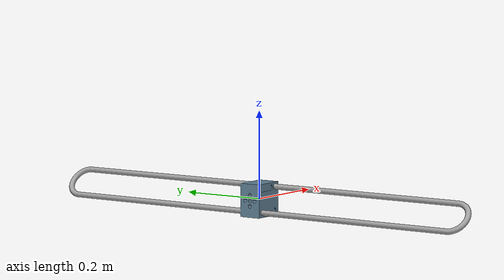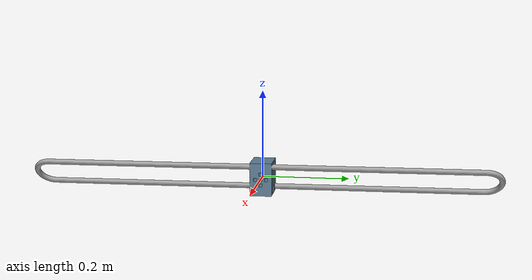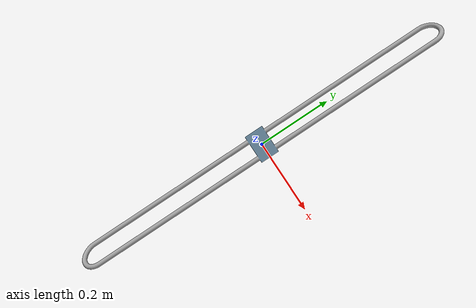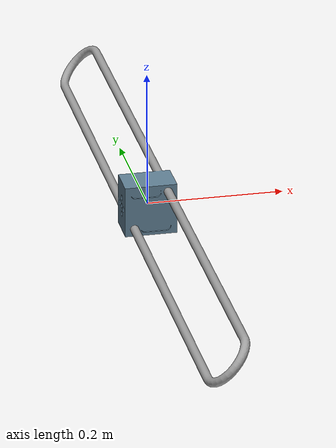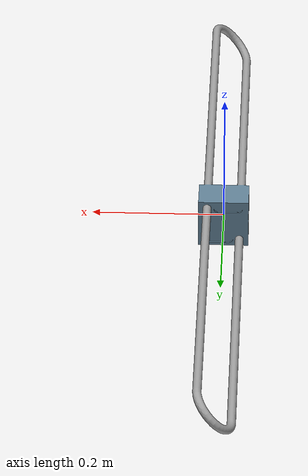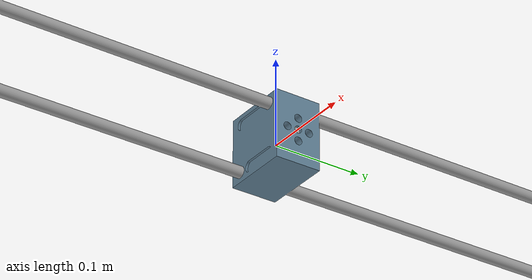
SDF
<?xml version="1.0" ?>
<sdf version="1.6">
  <model name="communications_module">
      <plugin name="link_states" filename="libiarc_simulation_tools_link_plugin.so">
        <link_name>link</link_name>
      </plugin>
      <static>0</static>
      <plugin name="dipole_magnet" filename="libiarc_simulation_tools_magnet_plugin.so">
        <bodyName>magnet</bodyName>
        <Id>3</Id>
        <dipole_moment>0 0 0.739859</dipole_moment>
        <!-- Set to false if not using ROS -->
        <shouldPublish>true</shouldPublish>
        <topicNs>magnetic_force/communicatios_module</topicNs>
        <updateRate>100</updateRate>
      </plugin>
      <link name='magnet'>
        <inertial>
          <mass>1</mass>
          <inertia>
            <ixx>0.145833</ixx>
            <ixy>0</ixy>
            <ixz>0</ixz>
            <iyy>0.145833</iyy>
            <iyz>0</iyz>
            <izz>0.125</izz>
          </inertia>
          <pose>0 0 0 0 -0 0</pose>
        </inertial>
        <self_collide>0</self_collide>
        <enable_wind>0</enable_wind>
        <kinematic>0</kinematic>
        <pose>0.02921 0 0 0 -1.57 0</pose>
        <gravity>1</gravity>
        <visual name='visual'>
          <geometry>
            <cylinder>
              <radius>0.003968</radius>
              <length>0.0127</length>
            </cylinder>
          </geometry>
          <material>
            <script>
              <name>Gazebo/Grey</name>
              <uri>file://media/materials/scripts/gazebo.material</uri>
            </script>
          </material>
          <pose>0 0 0 0 -0 0</pose>
        </visual>
        <collision name='collision'>
          <pose>0 0 0 0 0 0</pose>
          <geometry>
            <cylinder>
              <radius>0.003968</radius>
              <length>0.0127</length>
            </cylinder>
          </geometry>
        </collision>
      </link>
      <link name='link'>
      <inertial>
        <mass>2</mass>
        <inertia>
          <ixx>0.07284621567</ixx>
          <ixy>0</ixy>
          <ixz>0</ixz>
          <iyy>0.00219699777</iyy>
          <iyz>0</iyz>
          <izz>0.07364161484</izz>
        </inertia>
        <pose>0 0 0 0 0 0</pose>
      </inertial>
       <collision name="collision">
        <geometry>
            <mesh>
              <uri>model://communications_module/meshes/communications_module.dae</uri>
              <scale>1 1 1</scale>
            </mesh>
        </geometry>
        <surface>
          <contact>
             <collide_bitmask>0xffff</collide_bitmask>
             <ode>
               <max_vel>0</max_vel>
               <min_depth>0.001</min_depth>
             </ode>
          </contact>
          <friction>
            <ode>
              <mu>100</mu>
              <mu2>50</mu2>
            </ode>
          </friction>
        </surface>
      </collision>
        <visual name='visual'>
          <geometry>
            <mesh>
              <uri>model://communications_module/meshes/communications_module.dae</uri>
              <scale>1 1 1</scale>
            </mesh>
          </geometry>
        </visual>
      </link>
    <joint name='comm_module_magnet' type='fixed' >
      <parent>link</parent>
      <child>magnet</child>
    </joint>
  </model>
</sdf>
